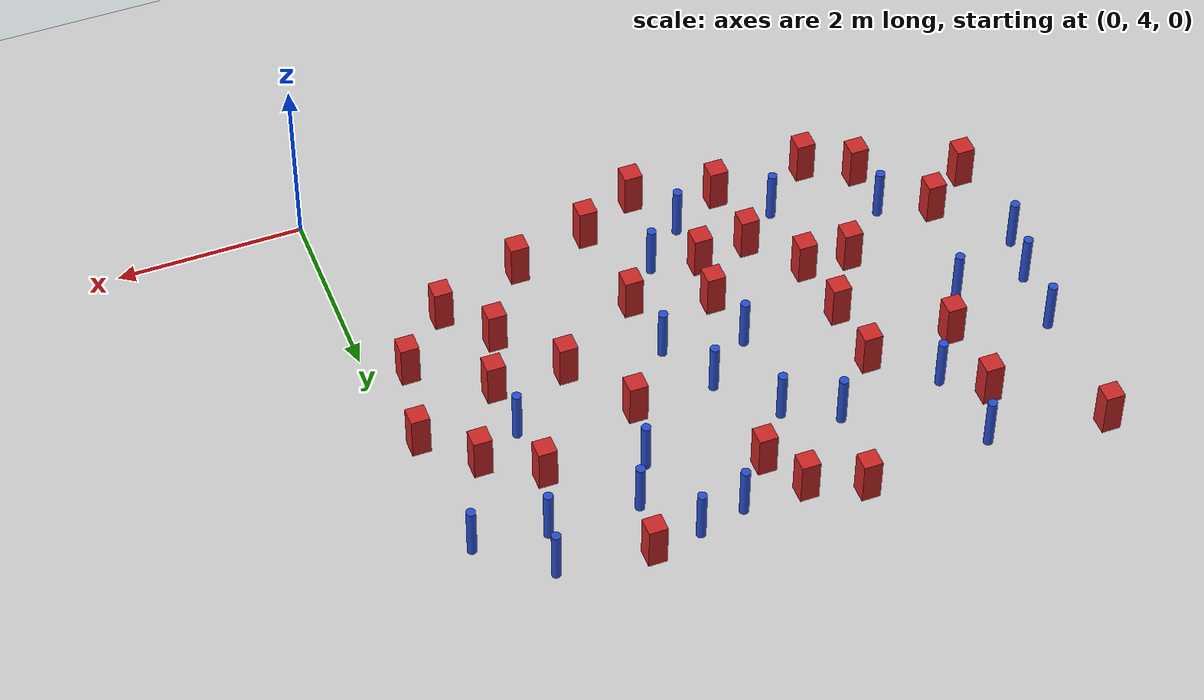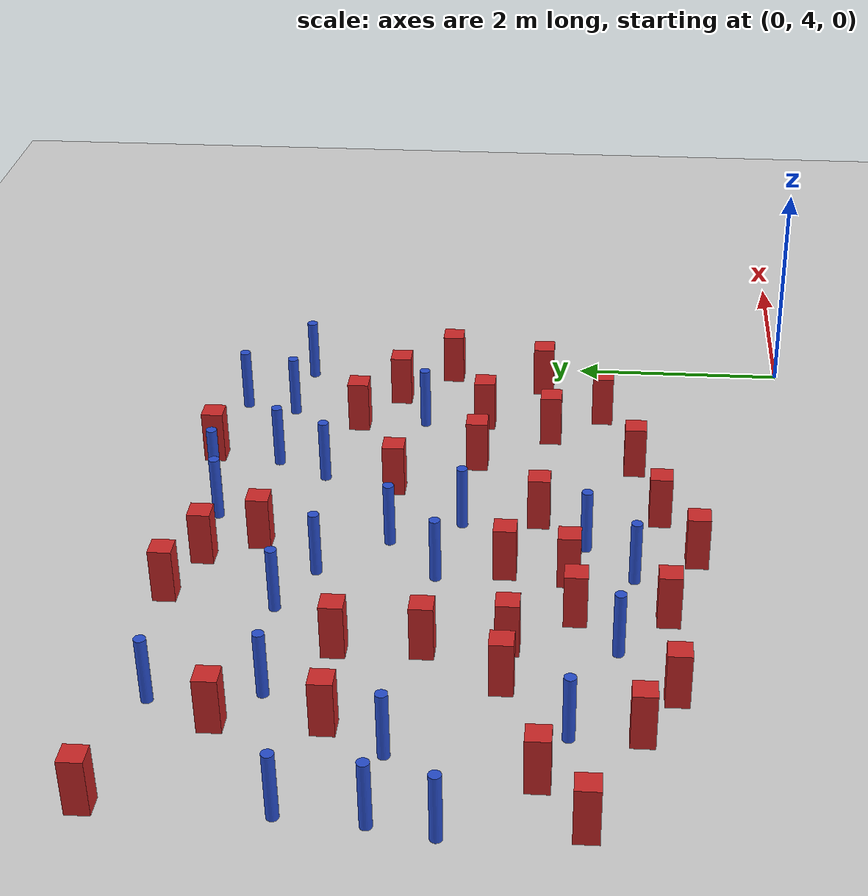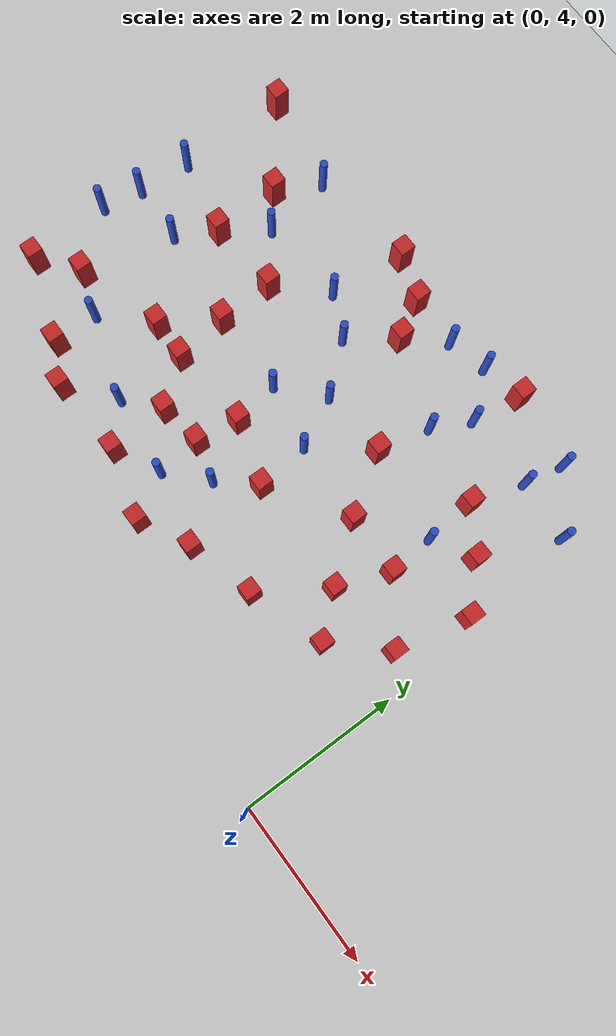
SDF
<sdf version="1.6">
 <world name="default">
  <model name="ground_plane">
   <static>1</static>
   <link name="link">
    <collision name="collision">
     <geometry><plane><normal>0 0 1</normal><size>100 100</size></plane></geometry>
     <surface><friction><ode><mu>100</mu><mu2>50</mu2></ode></friction></surface>
    </collision>
    <visual name="visual">
     <cast_shadows>0</cast_shadows>
     <geometry><plane><normal>0 0 1</normal><size>100 100</size></plane></geometry>
     <material>
      <ambient>1.0 1.0 1.0 1.0</ambient>
      <diffuse>0.8 0.8 0.8 1.0</diffuse>
      <specular>0.01 0.01 0.01 1.000000</specular>
     </material>
    </visual>
   </link>
  </model>
  <model name="pole_obstacle2">
   <static>true</static>
   <pose>-5.81833695681 5.93957102917 -9.47619616065e-06 5.49618799737e-07 2.36310414037e-07 -1.55090534814e-07</pose>
   <link name="link">
    <pose>0 0 0.3 0 -0 0</pose>
    <inertial>
     <mass>1</mass>
     <inertia><ixx>0.145833</ixx><ixy>0</ixy><ixz>0</ixz><iyy>0.145833</iyy><iyz>0</iyz><izz>0.125</izz></inertia>
    </inertial>
    <collision name="collision">
     <geometry><cylinder><radius>0.05</radius><length>.6</length></cylinder></geometry>
    </collision>
    <visual name="visual">
     <geometry><cylinder><radius>0.05</radius><length>.6</length></cylinder></geometry>
     <material>
      <script><name>Gazebo/Blue</name><uri>file://media/materials/scripts/gazebo.material</uri></script>
     </material>
    </visual>
   </link>
  </model>
  <model name="square_post_obstacle5">
   <static>true</static>
   <pose>-4.30946437801 5.93188076959 -6.11067671241e-07 -5.50515727128e-06 -8.79689657224e-07 2.37013304536e-05</pose>
   <link name="link">
    <pose>0 0 0.25 0 -0 0</pose>
    <inertial>
     <mass>100</mass>
     <inertia>
      <ixx>0.166667</ixx>
      <ixy>0</ixy>
      <ixz>0</ixz>
      <iyy>0.166667</iyy>
      <iyz>0</iyz>
      <izz>0.166667</izz>
     </inertia>
    </inertial>
    <collision name="collision"><geometry><box><size>.2 .2 .5</size></box></geometry></collision>
    <visual name="visual">
     <geometry><box><size>.2 .2 .5</size></box></geometry>
     <material>
      <script><name>Gazebo/Red</name><uri>file://media/materials/scripts/gazebo.material</uri></script>
     </material>
    </visual>
   </link>
  </model>
  <model name="pole_obstacle5">
   <static>true</static>
   <pose>-5.44458676205 8.355744914 -9.47619616065e-06 5.49618799737e-07 2.36310414065e-07 -1.55090534796e-07</pose>
   <link name="link">
    <pose>0 0 0.3 0 -0 0</pose>
    <inertial>
     <mass>1</mass>
     <inertia><ixx>0.145833</ixx><ixy>0</ixy><ixz>0</ixz><iyy>0.145833</iyy><iyz>0</iyz><izz>0.125</izz></inertia>
    </inertial>
    <collision name="collision">
     <geometry><cylinder><radius>0.05</radius><length>.6</length></cylinder></geometry>
    </collision>
    <visual name="visual">
     <geometry><cylinder><radius>0.05</radius><length>.6</length></cylinder></geometry>
     <material>
      <script><name>Gazebo/Blue</name><uri>file://media/materials/scripts/gazebo.material</uri></script>
     </material>
    </visual>
   </link>
  </model>
  <model name="square_post_obstacle7">
   <static>true</static>
   <pose>-1.92319323468 5.44292413541 -6.11067671241e-07 -5.50515727128e-06 -8.79689657224e-07 2.37013304536e-05</pose>
   <link name="link">
    <pose>0 0 0.25 0 -0 0</pose>
    <inertial>
     <mass>100</mass>
     <inertia>
      <ixx>0.166667</ixx>
      <ixy>0</ixy>
      <ixz>0</ixz>
      <iyy>0.166667</iyy>
      <iyz>0</iyz>
      <izz>0.166667</izz>
     </inertia>
    </inertial>
    <collision name="collision"><geometry><box><size>.2 .2 .5</size></box></geometry></collision>
    <visual name="visual">
     <geometry><box><size>.2 .2 .5</size></box></geometry>
     <material>
      <script><name>Gazebo/Red</name><uri>file://media/materials/scripts/gazebo.material</uri></script>
     </material>
    </visual>
   </link>
  </model>
  <model name="pole_obstacle7">
   <static>true</static>
   <pose>-0.26180700797 8.7305991788 -9.47619616065e-06 5.49618799738e-07 2.36310414034e-07 -1.55090534817e-07</pose>
   <link name="link">
    <pose>0 0 0.3 0 -0 0</pose>
    <inertial>
     <mass>1</mass>
     <inertia><ixx>0.145833</ixx><ixy>0</ixy><ixz>0</ixz><iyy>0.145833</iyy><iyz>0</iyz><izz>0.125</izz></inertia>
    </inertial>
    <collision name="collision">
     <geometry><cylinder><radius>0.05</radius><length>.6</length></cylinder></geometry>
    </collision>
    <visual name="visual">
     <geometry><cylinder><radius>0.05</radius><length>.6</length></cylinder></geometry>
     <material>
      <script><name>Gazebo/Blue</name><uri>file://media/materials/scripts/gazebo.material</uri></script>
     </material>
    </visual>
   </link>
  </model>
  <model name="square_post_obstacle11">
   <static>true</static>
   <pose>-0.690609439429 7.77177443221 -6.11067671241e-07 -5.50515727128e-06 -8.79689657224e-07 2.37013304536e-05</pose>
   <link name="link">
    <pose>0 0 0.25 0 -0 0</pose>
    <inertial>
     <mass>100</mass>
     <inertia>
      <ixx>0.166667</ixx>
      <ixy>0</ixy>
      <ixz>0</ixz>
      <iyy>0.166667</iyy>
      <iyz>0</iyz>
      <izz>0.166667</izz>
     </inertia>
    </inertial>
    <collision name="collision"><geometry><box><size>.2 .2 .5</size></box></geometry></collision>
    <visual name="visual">
     <geometry><box><size>.2 .2 .5</size></box></geometry>
     <material>
      <script><name>Gazebo/Red</name><uri>file://media/materials/scripts/gazebo.material</uri></script>
     </material>
    </visual>
   </link>
  </model>
  <model name="pole_obstacle11">
   <static>true</static>
   <pose>-5.57443344239 9.24902005777 -9.47619616065e-06 5.49618799737e-07 2.36310414065e-07 -1.55090534796e-07</pose>
   <link name="link">
    <pose>0 0 0.3 0 -0 0</pose>
    <inertial>
     <mass>1</mass>
     <inertia><ixx>0.145833</ixx><ixy>0</ixy><ixz>0</ixz><iyy>0.145833</iyy><iyz>0</iyz><izz>0.125</izz></inertia>
    </inertial>
    <collision name="collision">
     <geometry><cylinder><radius>0.05</radius><length>.6</length></cylinder></geometry>
    </collision>
    <visual name="visual">
     <geometry><cylinder><radius>0.05</radius><length>.6</length></cylinder></geometry>
     <material>
      <script><name>Gazebo/Blue</name><uri>file://media/materials/scripts/gazebo.material</uri></script>
     </material>
    </visual>
   </link>
  </model>
  <model name="pole_obstacle29">
   <static>true</static>
   <pose>-2.94104141852 9.20518685365 -9.4761961606e-06 5.49618799729e-07 2.36310414e-07 -1.55090534824e-07</pose>
   <link name="link">
    <pose>0 0 0.3 0 -0 0</pose>
    <inertial>
     <mass>1</mass>
     <inertia><ixx>0.145833</ixx><ixy>0</ixy><ixz>0</ixz><iyy>0.145833</iyy><iyz>0</iyz><izz>0.125</izz></inertia>
    </inertial>
    <collision name="collision">
     <geometry><cylinder><radius>0.05</radius><length>.6</length></cylinder></geometry>
    </collision>
    <visual name="visual">
     <geometry><cylinder><radius>0.05</radius><length>.6</length></cylinder></geometry>
     <material>
      <script><name>Gazebo/Blue</name><uri>file://media/materials/scripts/gazebo.material</uri></script>
     </material>
    </visual>
   </link>
  </model>
  <model name="pole_obstacle34">
   <static>true</static>
   <pose>-3.763663958 8.18637187351 -9.47619616065e-06 5.49618799738e-07 2.36310414059e-07 -1.55090534802e-07</pose>
   <link name="link">
    <pose>0 0 0.3 0 -0 0</pose>
    <inertial>
     <mass>1</mass>
     <inertia><ixx>0.145833</ixx><ixy>0</ixy><ixz>0</ixz><iyy>0.145833</iyy><iyz>0</iyz><izz>0.125</izz></inertia>
    </inertial>
    <collision name="collision">
     <geometry><cylinder><radius>0.05</radius><length>.6</length></cylinder></geometry>
    </collision>
    <visual name="visual">
     <geometry><cylinder><radius>0.05</radius><length>.6</length></cylinder></geometry>
     <material>
      <script><name>Gazebo/Blue</name><uri>file://media/materials/scripts/gazebo.material</uri></script>
     </material>
    </visual>
   </link>
  </model>
  <model name="pole_obstacle37">
   <static>true</static>
   <pose>-2.94861577744 6.98473050301 -9.47619616065e-06 5.49618799738e-07 2.3631041406e-07 -1.55090534801e-07</pose>
   <link name="link">
    <pose>0 0 0.3 0 -0 0</pose>
    <inertial>
     <mass>1</mass>
     <inertia><ixx>0.145833</ixx><ixy>0</ixy><ixz>0</ixz><iyy>0.145833</iyy><iyz>0</iyz><izz>0.125</izz></inertia>
    </inertial>
    <collision name="collision">
     <geometry><cylinder><radius>0.05</radius><length>.6</length></cylinder></geometry>
    </collision>
    <visual name="visual">
     <geometry><cylinder><radius>0.05</radius><length>.6</length></cylinder></geometry>
     <material>
      <script><name>Gazebo/Blue</name><uri>file://media/materials/scripts/gazebo.material</uri></script>
     </material>
    </visual>
   </link>
  </model>
  <model name="square_post_obstacle39">
   <static>true</static>
   <pose>-0.97510671104 5.76018146043 -6.11067671241e-07 -5.50515727128e-06 -8.79689657224e-07 2.37013304536e-05</pose>
   <link name="link">
    <pose>0 0 0.25 0 -0 0</pose>
    <inertial>
     <mass>100</mass>
     <inertia>
      <ixx>0.166667</ixx>
      <ixy>0</ixy>
      <ixz>0</ixz>
      <iyy>0.166667</iyy>
      <iyz>0</iyz>
      <izz>0.166667</izz>
     </inertia>
    </inertial>
    <collision name="collision"><geometry><box><size>.2 .2 .5</size></box></geometry></collision>
    <visual name="visual">
     <geometry><box><size>.2 .2 .5</size></box></geometry>
     <material>
      <script><name>Gazebo/Red</name><uri>file://media/materials/scripts/gazebo.material</uri></script>
     </material>
    </visual>
   </link>
  </model>
  <model name="square_post_obstacle44">
   <static>true</static>
   <pose>-1.14217479079 6.90516083748 -6.11067671241e-07 -5.50515727128e-06 -8.79689657224e-07 2.37013304536e-05</pose>
   <link name="link">
    <pose>0 0 0.25 0 -0 0</pose>
    <inertial>
     <mass>100</mass>
     <inertia>
      <ixx>0.166667</ixx>
      <ixy>0</ixy>
      <ixz>0</ixz>
      <iyy>0.166667</iyy>
      <iyz>0</iyz>
      <izz>0.166667</izz>
     </inertia>
    </inertial>
    <collision name="collision"><geometry><box><size>.2 .2 .5</size></box></geometry></collision>
    <visual name="visual">
     <geometry><box><size>.2 .2 .5</size></box></geometry>
     <material>
      <script><name>Gazebo/Red</name><uri>file://media/materials/scripts/gazebo.material</uri></script>
     </material>
    </visual>
   </link>
  </model>
  <model name="pole_obstacle49">
   <static>true</static>
   <pose>-3.25867860269 5.86727887538 -9.47619616065e-06 5.49618799738e-07 2.3631041406e-07 -1.55090534801e-07</pose>
   <link name="link">
    <pose>0 0 0.3 0 -0 0</pose>
    <inertial>
     <mass>1</mass>
     <inertia><ixx>0.145833</ixx><ixy>0</ixy><ixz>0</ixz><iyy>0.145833</iyy><iyz>0</iyz><izz>0.125</izz></inertia>
    </inertial>
    <collision name="collision">
     <geometry><cylinder><radius>0.05</radius><length>.6</length></cylinder></geometry>
    </collision>
    <visual name="visual">
     <geometry><cylinder><radius>0.05</radius><length>.6</length></cylinder></geometry>
     <material>
      <script><name>Gazebo/Blue</name><uri>file://media/materials/scripts/gazebo.material</uri></script>
     </material>
    </visual>
   </link>
  </model>
  <model name="pole_obstacle50">
   <static>true</static>
   <pose>-6.1054438863 7.32093617901 -9.47619616065e-06 5.49618799737e-07 2.36310414037e-07 -1.55090534814e-07</pose>
   <link name="link">
    <pose>0 0 0.3 0 -0 0</pose>
    <inertial>
     <mass>1</mass>
     <inertia><ixx>0.145833</ixx><ixy>0</ixy><ixz>0</ixz><iyy>0.145833</iyy><iyz>0</iyz><izz>0.125</izz></inertia>
    </inertial>
    <collision name="collision">
     <geometry><cylinder><radius>0.05</radius><length>.6</length></cylinder></geometry>
    </collision>
    <visual name="visual">
     <geometry><cylinder><radius>0.05</radius><length>.6</length></cylinder></geometry>
     <material>
      <script><name>Gazebo/Blue</name><uri>file://media/materials/scripts/gazebo.material</uri></script>
     </material>
    </visual>
   </link>
  </model>
  <model name="square_post_obstacle58">
   <static>true</static>
   <pose>-1.90418923898 9.42533072207 -6.11067671241e-07 -5.50515727128e-06 -8.79689657224e-07 2.37013304536e-05</pose>
   <link name="link">
    <pose>0 0 0.25 0 -0 0</pose>
    <inertial>
     <mass>100</mass>
     <inertia>
      <ixx>0.166667</ixx>
      <ixy>0</ixy>
      <ixz>0</ixz>
      <iyy>0.166667</iyy>
      <iyz>0</iyz>
      <izz>0.166667</izz>
     </inertia>
    </inertial>
    <collision name="collision"><geometry><box><size>.2 .2 .5</size></box></geometry></collision>
    <visual name="visual">
     <geometry><box><size>.2 .2 .5</size></box></geometry>
     <material>
      <script><name>Gazebo/Red</name><uri>file://media/materials/scripts/gazebo.material</uri></script>
     </material>
    </visual>
   </link>
  </model>
  <model name="pole_obstacle59">
   <static>true</static>
   <pose>-3.71856970385 5.43958688973 -9.4761961606e-06 5.49618799729e-07 2.36310414006e-07 -1.55090534822e-07</pose>
   <link name="link">
    <pose>0 0 0.3 0 -0 0</pose>
    <inertial>
     <mass>1</mass>
     <inertia><ixx>0.145833</ixx><ixy>0</ixy><ixz>0</ixz><iyy>0.145833</iyy><iyz>0</iyz><izz>0.125</izz></inertia>
    </inertial>
    <collision name="collision">
     <geometry><cylinder><radius>0.05</radius><length>.6</length></cylinder></geometry>
    </collision>
    <visual name="visual">
     <geometry><cylinder><radius>0.05</radius><length>.6</length></cylinder></geometry>
     <material>
      <script><name>Gazebo/Blue</name><uri>file://media/materials/scripts/gazebo.material</uri></script>
     </material>
    </visual>
   </link>
  </model>
  <model name="pole_obstacle65">
   <static>true</static>
   <pose>-6.81799207225 8.04129058109 -9.47619616065e-06 5.49618799737e-07 2.36310414048e-07 -1.55090534806e-07</pose>
   <link name="link">
    <pose>0 0 0.3 0 -0 0</pose>
    <inertial>
     <mass>1</mass>
     <inertia><ixx>0.145833</ixx><ixy>0</ixy><ixz>0</ixz><iyy>0.145833</iyy><iyz>0</iyz><izz>0.125</izz></inertia>
    </inertial>
    <collision name="collision">
     <geometry><cylinder><radius>0.05</radius><length>.6</length></cylinder></geometry>
    </collision>
    <visual name="visual">
     <geometry><cylinder><radius>0.05</radius><length>.6</length></cylinder></geometry>
     <material>
      <script><name>Gazebo/Blue</name><uri>file://media/materials/scripts/gazebo.material</uri></script>
     </material>
    </visual>
   </link>
  </model>
  <model name="square_post_obstacle73">
   <static>true</static>
   <pose>-6.84872192201 5.77889668165 -6.11067671241e-07 -5.50515727128e-06 -8.79689657224e-07 2.37013304536e-05</pose>
   <link name="link">
    <pose>0 0 0.25 0 -0 0</pose>
    <inertial>
     <mass>100</mass>
     <inertia>
      <ixx>0.166667</ixx>
      <ixy>0</ixy>
      <ixz>0</ixz>
      <iyy>0.166667</iyy>
      <iyz>0</iyz>
      <izz>0.166667</izz>
     </inertia>
    </inertial>
    <collision name="collision"><geometry><box><size>.2 .2 .5</size></box></geometry></collision>
    <visual name="visual">
     <geometry><box><size>.2 .2 .5</size></box></geometry>
     <material>
      <script><name>Gazebo/Red</name><uri>file://media/materials/scripts/gazebo.material</uri></script>
     </material>
    </visual>
   </link>
  </model>
  <model name="square_post_obstacle75">
   <static>true</static>
   <pose>-3.67546666853 6.55635057806 -6.11067671241e-07 -5.50515727128e-06 -8.79689657224e-07 2.37013304536e-05</pose>
   <link name="link">
    <pose>0 0 0.25 0 -0 0</pose>
    <inertial>
     <mass>100</mass>
     <inertia>
      <ixx>0.166667</ixx>
      <ixy>0</ixy>
      <ixz>0</ixz>
      <iyy>0.166667</iyy>
      <iyz>0</iyz>
      <izz>0.166667</izz>
     </inertia>
    </inertial>
    <collision name="collision"><geometry><box><size>.2 .2 .5</size></box></geometry></collision>
    <visual name="visual">
     <geometry><box><size>.2 .2 .5</size></box></geometry>
     <material>
      <script><name>Gazebo/Red</name><uri>file://media/materials/scripts/gazebo.material</uri></script>
     </material>
    </visual>
   </link>
  </model>
  <model name="pole_obstacle73">
   <static>true</static>
   <pose>-1.99590519166 8.80236627083 -9.47619616065e-06 5.49618799737e-07 2.36310414046e-07 -1.55090534809e-07</pose>
   <link name="link">
    <pose>0 0 0.3 0 -0 0</pose>
    <inertial>
     <mass>1</mass>
     <inertia><ixx>0.145833</ixx><ixy>0</ixy><ixz>0</ixz><iyy>0.145833</iyy><iyz>0</iyz><izz>0.125</izz></inertia>
    </inertial>
    <collision name="collision">
     <geometry><cylinder><radius>0.05</radius><length>.6</length></cylinder></geometry>
    </collision>
    <visual name="visual">
     <geometry><cylinder><radius>0.05</radius><length>.6</length></cylinder></geometry>
     <material>
      <script><name>Gazebo/Blue</name><uri>file://media/materials/scripts/gazebo.material</uri></script>
     </material>
    </visual>
   </link>
  </model>
  <model name="square_post_obstacle79">
   <static>true</static>
   <pose>-6.35110195523 6.15128916751 -6.11067671241e-07 -5.50515727128e-06 -8.79689657224e-07 2.37013304536e-05</pose>
   <link name="link">
    <pose>0 0 0.25 0 -0 0</pose>
    <inertial>
     <mass>100</mass>
     <inertia>
      <ixx>0.166667</ixx>
      <ixy>0</ixy>
      <ixz>0</ixz>
      <iyy>0.166667</iyy>
      <iyz>0</iyz>
      <izz>0.166667</izz>
     </inertia>
    </inertial>
    <collision name="collision"><geometry><box><size>.2 .2 .5</size></box></geometry></collision>
    <visual name="visual">
     <geometry><box><size>.2 .2 .5</size></box></geometry>
     <material>
      <script><name>Gazebo/Red</name><uri>file://media/materials/scripts/gazebo.material</uri></script>
     </material>
    </visual>
   </link>
  </model>
  <model name="pole_obstacle81">
   <static>true</static>
   <pose>-1.03234002842 8.80458537299 -9.47619616065e-06 5.49618799737e-07 2.3631041405e-07 -1.55090534806e-07</pose>
   <link name="link">
    <pose>0 0 0.3 0 -0 0</pose>
    <inertial>
     <mass>1</mass>
     <inertia><ixx>0.145833</ixx><ixy>0</ixy><ixz>0</ixz><iyy>0.145833</iyy><iyz>0</iyz><izz>0.125</izz></inertia>
    </inertial>
    <collision name="collision">
     <geometry><cylinder><radius>0.05</radius><length>.6</length></cylinder></geometry>
    </collision>
    <visual name="visual">
     <geometry><cylinder><radius>0.05</radius><length>.6</length></cylinder></geometry>
     <material>
      <script><name>Gazebo/Blue</name><uri>file://media/materials/scripts/gazebo.material</uri></script>
     </material>
    </visual>
   </link>
  </model>
  <model name="pole_obstacle82">
   <static>true</static>
   <pose>-2.23920383538 8.32822380168 -9.4761961606e-06 5.49618799729e-07 2.36310414e-07 -1.55090534824e-07</pose>
   <link name="link">
    <pose>0 0 0.3 0 -0 0</pose>
    <inertial>
     <mass>1</mass>
     <inertia><ixx>0.145833</ixx><ixy>0</ixy><ixz>0</ixz><iyy>0.145833</iyy><iyz>0</iyz><izz>0.125</izz></inertia>
    </inertial>
    <collision name="collision">
     <geometry><cylinder><radius>0.05</radius><length>.6</length></cylinder></geometry>
    </collision>
    <visual name="visual">
     <geometry><cylinder><radius>0.05</radius><length>.6</length></cylinder></geometry>
     <material>
      <script><name>Gazebo/Blue</name><uri>file://media/materials/scripts/gazebo.material</uri></script>
     </material>
    </visual>
   </link>
  </model>
  <model name="pole_obstacle85">
   <static>true</static>
   <pose>-6.86442686227 7.35812549986 -9.47619616065e-06 5.49618799737e-07 2.36310414037e-07 -1.55090534814e-07</pose>
   <link name="link">
    <pose>0 0 0.3 0 -0 0</pose>
    <inertial>
     <mass>1</mass>
     <inertia><ixx>0.145833</ixx><ixy>0</ixy><ixz>0</ixz><iyy>0.145833</iyy><iyz>0</iyz><izz>0.125</izz></inertia>
    </inertial>
    <collision name="collision">
     <geometry><cylinder><radius>0.05</radius><length>.6</length></cylinder></geometry>
    </collision>
    <visual name="visual">
     <geometry><cylinder><radius>0.05</radius><length>.6</length></cylinder></geometry>
     <material>
      <script><name>Gazebo/Blue</name><uri>file://media/materials/scripts/gazebo.material</uri></script>
     </material>
    </visual>
   </link>
  </model>
  <model name="pole_obstacle89">
   <static>true</static>
   <pose>-6.95690997227 6.84431766455 -9.47619616065e-06 5.49618799737e-07 2.36310414037e-07 -1.55090534814e-07</pose>
   <link name="link">
    <pose>0 0 0.3 0 -0 0</pose>
    <inertial>
     <mass>1</mass>
     <inertia><ixx>0.145833</ixx><ixy>0</ixy><ixz>0</ixz><iyy>0.145833</iyy><iyz>0</iyz><izz>0.125</izz></inertia>
    </inertial>
    <collision name="collision">
     <geometry><cylinder><radius>0.05</radius><length>.6</length></cylinder></geometry>
    </collision>
    <visual name="visual">
     <geometry><cylinder><radius>0.05</radius><length>.6</length></cylinder></geometry>
     <material>
      <script><name>Gazebo/Blue</name><uri>file://media/materials/scripts/gazebo.material</uri></script>
     </material>
    </visual>
   </link>
  </model>
  <model name="pole_obstacle92">
   <static>true</static>
   <pose>-1.18280922246 7.48957110311 -9.47619616065e-06 5.49618799737e-07 2.36310414061e-07 -1.550905348e-07</pose>
   <link name="link">
    <pose>0 0 0.3 0 -0 0</pose>
    <inertial>
     <mass>1</mass>
     <inertia><ixx>0.145833</ixx><ixy>0</ixy><ixz>0</ixz><iyy>0.145833</iyy><iyz>0</iyz><izz>0.125</izz></inertia>
    </inertial>
    <collision name="collision">
     <geometry><cylinder><radius>0.05</radius><length>.6</length></cylinder></geometry>
    </collision>
    <visual name="visual">
     <geometry><cylinder><radius>0.05</radius><length>.6</length></cylinder></geometry>
     <material>
      <script><name>Gazebo/Blue</name><uri>file://media/materials/scripts/gazebo.material</uri></script>
     </material>
    </visual>
   </link>
  </model>
  <model name="square_post_obstacle92">
   <static>true</static>
   <pose>-0.407981882254 6.36074857831 -6.11067671241e-07 -5.50515727128e-06 -8.79689657224e-07 2.37013304536e-05</pose>
   <link name="link">
    <pose>0 0 0.25 0 -0 0</pose>
    <inertial>
     <mass>100</mass>
     <inertia>
      <ixx>0.166667</ixx>
      <ixy>0</ixy>
      <ixz>0</ixz>
      <iyy>0.166667</iyy>
      <iyz>0</iyz>
      <izz>0.166667</izz>
     </inertia>
    </inertial>
    <collision name="collision"><geometry><box><size>.2 .2 .5</size></box></geometry></collision>
    <visual name="visual">
     <geometry><box><size>.2 .2 .5</size></box></geometry>
     <material>
      <script><name>Gazebo/Red</name><uri>file://media/materials/scripts/gazebo.material</uri></script>
     </material>
    </visual>
   </link>
  </model>
  <model name="square_post_obstacle95">
   <static>true</static>
   <pose>-5.29317241911 5.10569635922 -6.11067671241e-07 -5.50515727128e-06 -8.79689657224e-07 2.37013304536e-05</pose>
   <link name="link">
    <pose>0 0 0.25 0 -0 0</pose>
    <inertial>
     <mass>100</mass>
     <inertia>
      <ixx>0.166667</ixx>
      <ixy>0</ixy>
      <ixz>0</ixz>
      <iyy>0.166667</iyy>
      <iyz>0</iyz>
      <izz>0.166667</izz>
     </inertia>
    </inertial>
    <collision name="collision"><geometry><box><size>.2 .2 .5</size></box></geometry></collision>
    <visual name="visual">
     <geometry><box><size>.2 .2 .5</size></box></geometry>
     <material>
      <script><name>Gazebo/Red</name><uri>file://media/materials/scripts/gazebo.material</uri></script>
     </material>
    </visual>
   </link>
  </model>
  <model name="square_post_obstacle99">
   <static>true</static>
   <pose>-1.91256514736 6.92668962869 -6.11067671241e-07 -5.50515727128e-06 -8.79689657224e-07 2.37013304536e-05</pose>
   <link name="link">
    <pose>0 0 0.25 0 -0 0</pose>
    <inertial>
     <mass>100</mass>
     <inertia>
      <ixx>0.166667</ixx>
      <ixy>0</ixy>
      <ixz>0</ixz>
      <iyy>0.166667</iyy>
      <iyz>0</iyz>
      <izz>0.166667</izz>
     </inertia>
    </inertial>
    <collision name="collision"><geometry><box><size>.2 .2 .5</size></box></geometry></collision>
    <visual name="visual">
     <geometry><box><size>.2 .2 .5</size></box></geometry>
     <material>
      <script><name>Gazebo/Red</name><uri>file://media/materials/scripts/gazebo.material</uri></script>
     </material>
    </visual>
   </link>
  </model>
  <model name="pole_obstacle114">
   <static>true</static>
   <pose>-4.3118623763 8.45672680437 -9.47619616065e-06 5.49618799737e-07 2.36310414065e-07 -1.55090534796e-07</pose>
   <link name="link">
    <pose>0 0 0.3 0 -0 0</pose>
    <inertial>
     <mass>1</mass>
     <inertia><ixx>0.145833</ixx><ixy>0</ixy><ixz>0</ixz><iyy>0.145833</iyy><iyz>0</iyz><izz>0.125</izz></inertia>
    </inertial>
    <collision name="collision">
     <geometry><cylinder><radius>0.05</radius><length>.6</length></cylinder></geometry>
    </collision>
    <visual name="visual">
     <geometry><cylinder><radius>0.05</radius><length>.6</length></cylinder></geometry>
     <material>
      <script><name>Gazebo/Blue</name><uri>file://media/materials/scripts/gazebo.material</uri></script>
     </material>
    </visual>
   </link>
  </model>
  <model name="square_post_obstacle104">
   <static>true</static>
   <pose>-2.76906793275 5.21367266199 -6.11067671241e-07 -5.50515727128e-06 -8.79689657224e-07 2.37013304536e-05</pose>
   <link name="link">
    <pose>0 0 0.25 0 -0 0</pose>
    <inertial>
     <mass>100</mass>
     <inertia>
      <ixx>0.166667</ixx>
      <ixy>0</ixy>
      <ixz>0</ixz>
      <iyy>0.166667</iyy>
      <iyz>0</iyz>
      <izz>0.166667</izz>
     </inertia>
    </inertial>
    <collision name="collision"><geometry><box><size>.2 .2 .5</size></box></geometry></collision>
    <visual name="visual">
     <geometry><box><size>.2 .2 .5</size></box></geometry>
     <material>
      <script><name>Gazebo/Red</name><uri>file://media/materials/scripts/gazebo.material</uri></script>
     </material>
    </visual>
   </link>
  </model>
  <model name="square_post_obstacle105">
   <static>true</static>
   <pose>-0.204549080265 7.28830263991 -6.11067671241e-07 -5.50515727128e-06 -8.79689657224e-07 2.37013304536e-05</pose>
   <link name="link">
    <pose>0 0 0.25 0 -0 0</pose>
    <inertial>
     <mass>100</mass>
     <inertia>
      <ixx>0.166667</ixx>
      <ixy>0</ixy>
      <ixz>0</ixz>
      <iyy>0.166667</iyy>
      <iyz>0</iyz>
      <izz>0.166667</izz>
     </inertia>
    </inertial>
    <collision name="collision"><geometry><box><size>.2 .2 .5</size></box></geometry></collision>
    <visual name="visual">
     <geometry><box><size>.2 .2 .5</size></box></geometry>
     <material>
      <script><name>Gazebo/Red</name><uri>file://media/materials/scripts/gazebo.material</uri></script>
     </material>
    </visual>
   </link>
  </model>
  <model name="square_post_obstacle117">
   <static>true</static>
   <pose>-4.27019305868 5.15765999209 -6.11067671241e-07 -5.50515727128e-06 -8.79689657224e-07 2.37013304536e-05</pose>
   <link name="link">
    <pose>0 0 0.25 0 -0 0</pose>
    <inertial>
     <mass>100</mass>
     <inertia>
      <ixx>0.166667</ixx>
      <ixy>0</ixy>
      <ixz>0</ixz>
      <iyy>0.166667</iyy>
      <iyz>0</iyz>
      <izz>0.166667</izz>
     </inertia>
    </inertial>
    <collision name="collision"><geometry><box><size>.2 .2 .5</size></box></geometry></collision>
    <visual name="visual">
     <geometry><box><size>.2 .2 .5</size></box></geometry>
     <material>
      <script><name>Gazebo/Red</name><uri>file://media/materials/scripts/gazebo.material</uri></script>
     </material>
    </visual>
   </link>
  </model>
  <model name="square_post_obstacle124">
   <static>true</static>
   <pose>-4.85682069097 7.8738312947 -6.11067671241e-07 -5.50515727128e-06 -8.79689657224e-07 2.37013304536e-05</pose>
   <link name="link">
    <pose>0 0 0.25 0 -0 0</pose>
    <inertial>
     <mass>100</mass>
     <inertia>
      <ixx>0.166667</ixx>
      <ixy>0</ixy>
      <ixz>0</ixz>
      <iyy>0.166667</iyy>
      <iyz>0</iyz>
      <izz>0.166667</izz>
     </inertia>
    </inertial>
    <collision name="collision"><geometry><box><size>.2 .2 .5</size></box></geometry></collision>
    <visual name="visual">
     <geometry><box><size>.2 .2 .5</size></box></geometry>
     <material>
      <script><name>Gazebo/Red</name><uri>file://media/materials/scripts/gazebo.material</uri></script>
     </material>
    </visual>
   </link>
  </model>
  <model name="pole_obstacle142">
   <static>true</static>
   <pose>-3.26492832697 7.60374540366 -9.47619616065e-06 5.49618799738e-07 2.3631041406e-07 -1.55090534801e-07</pose>
   <link name="link">
    <pose>0 0 0.3 0 -0 0</pose>
    <inertial>
     <mass>1</mass>
     <inertia><ixx>0.145833</ixx><ixy>0</ixy><ixz>0</ixz><iyy>0.145833</iyy><iyz>0</iyz><izz>0.125</izz></inertia>
    </inertial>
    <collision name="collision">
     <geometry><cylinder><radius>0.05</radius><length>.6</length></cylinder></geometry>
    </collision>
    <visual name="visual">
     <geometry><cylinder><radius>0.05</radius><length>.6</length></cylinder></geometry>
     <material>
      <script><name>Gazebo/Blue</name><uri>file://media/materials/scripts/gazebo.material</uri></script>
     </material>
    </visual>
   </link>
  </model>
  <model name="pole_obstacle155">
   <static>true</static>
   <pose>-2.43321248155 9.33133249633 -9.4761961606e-06 5.49618799729e-07 2.36310414e-07 -1.55090534824e-07</pose>
   <link name="link">
    <pose>0 0 0.3 0 -0 0</pose>
    <inertial>
     <mass>1</mass>
     <inertia><ixx>0.145833</ixx><ixy>0</ixy><ixz>0</ixz><iyy>0.145833</iyy><iyz>0</iyz><izz>0.125</izz></inertia>
    </inertial>
    <collision name="collision">
     <geometry><cylinder><radius>0.05</radius><length>.6</length></cylinder></geometry>
    </collision>
    <visual name="visual">
     <geometry><cylinder><radius>0.05</radius><length>.6</length></cylinder></geometry>
     <material>
      <script><name>Gazebo/Blue</name><uri>file://media/materials/scripts/gazebo.material</uri></script>
     </material>
    </visual>
   </link>
  </model>
  <model name="square_post_obstacle145">
   <static>true</static>
   <pose>-5.83713753527 8.68588297781 -6.11067671241e-07 -5.50515727128e-06 -8.79689657224e-07 2.37013304536e-05</pose>
   <link name="link">
    <pose>0 0 0.25 0 -0 0</pose>
    <inertial>
     <mass>100</mass>
     <inertia>
      <ixx>0.166667</ixx>
      <ixy>0</ixy>
      <ixz>0</ixz>
      <iyy>0.166667</iyy>
      <iyz>0</iyz>
      <izz>0.166667</izz>
     </inertia>
    </inertial>
    <collision name="collision"><geometry><box><size>.2 .2 .5</size></box></geometry></collision>
    <visual name="visual">
     <geometry><box><size>.2 .2 .5</size></box></geometry>
     <material>
      <script><name>Gazebo/Red</name><uri>file://media/materials/scripts/gazebo.material</uri></script>
     </material>
    </visual>
   </link>
  </model>
  <model name="square_post_obstacle155">
   <static>true</static>
   <pose>-6.79887623607 9.45100425614 -6.11067671241e-07 -5.50515727128e-06 -8.79689657224e-07 2.37013304536e-05</pose>
   <link name="link">
    <pose>0 0 0.25 0 -0 0</pose>
    <inertial>
     <mass>100</mass>
     <inertia>
      <ixx>0.166667</ixx>
      <ixy>0</ixy>
      <ixz>0</ixz>
      <iyy>0.166667</iyy>
      <iyz>0</iyz>
      <izz>0.166667</izz>
     </inertia>
    </inertial>
    <collision name="collision"><geometry><box><size>.2 .2 .5</size></box></geometry></collision>
    <visual name="visual">
     <geometry><box><size>.2 .2 .5</size></box></geometry>
     <material>
      <script><name>Gazebo/Red</name><uri>file://media/materials/scripts/gazebo.material</uri></script>
     </material>
    </visual>
   </link>
  </model>
  <model name="square_post_obstacle156">
   <static>true</static>
   <pose>-3.34515012967 8.73984222616 -6.11067671241e-07 -5.50515727128e-06 -8.79689657224e-07 2.37013304536e-05</pose>
   <link name="link">
    <pose>0 0 0.25 0 -0 0</pose>
    <inertial>
     <mass>100</mass>
     <inertia>
      <ixx>0.166667</ixx>
      <ixy>0</ixy>
      <ixz>0</ixz>
      <iyy>0.166667</iyy>
      <iyz>0</iyz>
      <izz>0.166667</izz>
     </inertia>
    </inertial>
    <collision name="collision"><geometry><box><size>.2 .2 .5</size></box></geometry></collision>
    <visual name="visual">
     <geometry><box><size>.2 .2 .5</size></box></geometry>
     <material>
      <script><name>Gazebo/Red</name><uri>file://media/materials/scripts/gazebo.material</uri></script>
     </material>
    </visual>
   </link>
  </model>
  <model name="pole_obstacle165">
   <static>true</static>
   <pose>-4.74267724619 5.56910457579 -9.47619616065e-06 5.49618799737e-07 2.36310414037e-07 -1.55090534814e-07</pose>
   <link name="link">
    <pose>0 0 0.3 0 -0 0</pose>
    <inertial>
     <mass>1</mass>
     <inertia><ixx>0.145833</ixx><ixy>0</ixy><ixz>0</ixz><iyy>0.145833</iyy><iyz>0</iyz><izz>0.125</izz></inertia>
    </inertial>
    <collision name="collision">
     <geometry><cylinder><radius>0.05</radius><length>.6</length></cylinder></geometry>
    </collision>
    <visual name="visual">
     <geometry><cylinder><radius>0.05</radius><length>.6</length></cylinder></geometry>
     <material>
      <script><name>Gazebo/Blue</name><uri>file://media/materials/scripts/gazebo.material</uri></script>
     </material>
    </visual>
   </link>
  </model>
  <model name="pole_obstacle167">
   <static>true</static>
   <pose>-3.78420378303 7.14942266933 -9.47619616065e-06 5.49618799738e-07 2.3631041406e-07 -1.55090534801e-07</pose>
   <link name="link">
    <pose>0 0 0.3 0 -0 0</pose>
    <inertial>
     <mass>1</mass>
     <inertia><ixx>0.145833</ixx><ixy>0</ixy><ixz>0</ixz><iyy>0.145833</iyy><iyz>0</iyz><izz>0.125</izz></inertia>
    </inertial>
    <collision name="collision">
     <geometry><cylinder><radius>0.05</radius><length>.6</length></cylinder></geometry>
    </collision>
    <visual name="visual">
     <geometry><cylinder><radius>0.05</radius><length>.6</length></cylinder></geometry>
     <material>
      <script><name>Gazebo/Blue</name><uri>file://media/materials/scripts/gazebo.material</uri></script>
     </material>
    </visual>
   </link>
  </model>
  <model name="pole_obstacle169">
   <static>true</static>
   <pose>-0.932241594514 9.29612527255 -9.47619616065e-06 5.49618799737e-07 2.36310414038e-07 -1.55090534813e-07</pose>
   <link name="link">
    <pose>0 0 0.3 0 -0 0</pose>
    <inertial>
     <mass>1</mass>
     <inertia><ixx>0.145833</ixx><ixy>0</ixy><ixz>0</ixz><iyy>0.145833</iyy><iyz>0</iyz><izz>0.125</izz></inertia>
    </inertial>
    <collision name="collision">
     <geometry><cylinder><radius>0.05</radius><length>.6</length></cylinder></geometry>
    </collision>
    <visual name="visual">
     <geometry><cylinder><radius>0.05</radius><length>.6</length></cylinder></geometry>
     <material>
      <script><name>Gazebo/Blue</name><uri>file://media/materials/scripts/gazebo.material</uri></script>
     </material>
    </visual>
   </link>
  </model>
  <model name="square_post_obstacle166">
   <static>true</static>
   <pose>-2.86461788168 6.30049960394 -6.11067671241e-07 -5.50515727128e-06 -8.79689657224e-07 2.37013304536e-05</pose>
   <link name="link">
    <pose>0 0 0.25 0 -0 0</pose>
    <inertial>
     <mass>100</mass>
     <inertia>
      <ixx>0.166667</ixx>
      <ixy>0</ixy>
      <ixz>0</ixz>
      <iyy>0.166667</iyy>
      <iyz>0</iyz>
      <izz>0.166667</izz>
     </inertia>
    </inertial>
    <collision name="collision"><geometry><box><size>.2 .2 .5</size></box></geometry></collision>
    <visual name="visual">
     <geometry><box><size>.2 .2 .5</size></box></geometry>
     <material>
      <script><name>Gazebo/Red</name><uri>file://media/materials/scripts/gazebo.material</uri></script>
     </material>
    </visual>
   </link>
  </model>
  <model name="square_post_obstacle167">
   <static>true</static>
   <pose>-5.24558795393 6.48726975369 -6.11067671241e-07 -5.50515727128e-06 -8.79689657224e-07 2.37013304536e-05</pose>
   <link name="link">
    <pose>0 0 0.25 0 -0 0</pose>
    <inertial>
     <mass>100</mass>
     <inertia>
      <ixx>0.166667</ixx>
      <ixy>0</ixy>
      <ixz>0</ixz>
      <iyy>0.166667</iyy>
      <iyz>0</iyz>
      <izz>0.166667</izz>
     </inertia>
    </inertial>
    <collision name="collision"><geometry><box><size>.2 .2 .5</size></box></geometry></collision>
    <visual name="visual">
     <geometry><box><size>.2 .2 .5</size></box></geometry>
     <material>
      <script><name>Gazebo/Red</name><uri>file://media/materials/scripts/gazebo.material</uri></script>
     </material>
    </visual>
   </link>
  </model>
  <model name="square_post_obstacle180">
   <static>true</static>
   <pose>-3.39782377233 4.89852904873 -6.11067671241e-07 -5.50515727128e-06 -8.79689657224e-07 2.37013304536e-05</pose>
   <link name="link">
    <pose>0 0 0.25 0 -0 0</pose>
    <inertial>
     <mass>100</mass>
     <inertia>
      <ixx>0.166667</ixx>
      <ixy>0</ixy>
      <ixz>0</ixz>
      <iyy>0.166667</iyy>
      <iyz>0</iyz>
      <izz>0.166667</izz>
     </inertia>
    </inertial>
    <collision name="collision"><geometry><box><size>.2 .2 .5</size></box></geometry></collision>
    <visual name="visual">
     <geometry><box><size>.2 .2 .5</size></box></geometry>
     <material>
      <script><name>Gazebo/Red</name><uri>file://media/materials/scripts/gazebo.material</uri></script>
     </material>
    </visual>
   </link>
  </model>
  <model name="square_post_obstacle196">
   <static>true</static>
   <pose>-4.17899489575 9.40808967728 -6.11067671241e-07 -5.50515727128e-06 -8.79689657224e-07 2.37013304536e-05</pose>
   <link name="link">
    <pose>0 0 0.25 0 -0 0</pose>
    <inertial>
     <mass>100</mass>
     <inertia>
      <ixx>0.166667</ixx>
      <ixy>0</ixy>
      <ixz>0</ixz>
      <iyy>0.166667</iyy>
      <iyz>0</iyz>
      <izz>0.166667</izz>
     </inertia>
    </inertial>
    <collision name="collision"><geometry><box><size>.2 .2 .5</size></box></geometry></collision>
    <visual name="visual">
     <geometry><box><size>.2 .2 .5</size></box></geometry>
     <material>
      <script><name>Gazebo/Red</name><uri>file://media/materials/scripts/gazebo.material</uri></script>
     </material>
    </visual>
   </link>
  </model>
  <model name="square_post_obstacle202">
   <static>true</static>
   <pose>-1.38700132787 6.25152972323 -6.11067671241e-07 -5.50515727128e-06 -8.79689657224e-07 2.37013304536e-05</pose>
   <link name="link">
    <pose>0 0 0.25 0 -0 0</pose>
    <inertial>
     <mass>100</mass>
     <inertia>
      <ixx>0.166667</ixx>
      <ixy>0</ixy>
      <ixz>0</ixz>
      <iyy>0.166667</iyy>
      <iyz>0</iyz>
      <izz>0.166667</izz>
     </inertia>
    </inertial>
    <collision name="collision"><geometry><box><size>.2 .2 .5</size></box></geometry></collision>
    <visual name="visual">
     <geometry><box><size>.2 .2 .5</size></box></geometry>
     <material>
      <script><name>Gazebo/Red</name><uri>file://media/materials/scripts/gazebo.material</uri></script>
     </material>
    </visual>
   </link>
  </model>
  <model name="square_post_obstacle204">
   <static>true</static>
   <pose>-5.79486128075 5.37624011826 -6.11067671241e-07 -5.50515727128e-06 -8.79689657224e-07 2.37013304536e-05</pose>
   <link name="link">
    <pose>0 0 0.25 0 -0 0</pose>
    <inertial>
     <mass>100</mass>
     <inertia>
      <ixx>0.166667</ixx>
      <ixy>0</ixy>
      <ixz>0</ixz>
      <iyy>0.166667</iyy>
      <iyz>0</iyz>
      <izz>0.166667</izz>
     </inertia>
    </inertial>
    <collision name="collision"><geometry><box><size>.2 .2 .5</size></box></geometry></collision>
    <visual name="visual">
     <geometry><box><size>.2 .2 .5</size></box></geometry>
     <material>
      <script><name>Gazebo/Red</name><uri>file://media/materials/scripts/gazebo.material</uri></script>
     </material>
    </visual>
   </link>
  </model>
  <model name="square_post_obstacle206">
   <static>true</static>
   <pose>-1.2439306476 8.12925816726 -6.11067671241e-07 -5.50515727128e-06 -8.79689657224e-07 2.37013304536e-05</pose>
   <link name="link">
    <pose>0 0 0.25 0 -0 0</pose>
    <inertial>
     <mass>100</mass>
     <inertia>
      <ixx>0.166667</ixx>
      <ixy>0</ixy>
      <ixz>0</ixz>
      <iyy>0.166667</iyy>
      <iyz>0</iyz>
      <izz>0.166667</izz>
     </inertia>
    </inertial>
    <collision name="collision"><geometry><box><size>.2 .2 .5</size></box></geometry></collision>
    <visual name="visual">
     <geometry><box><size>.2 .2 .5</size></box></geometry>
     <material>
      <script><name>Gazebo/Red</name><uri>file://media/materials/scripts/gazebo.material</uri></script>
     </material>
    </visual>
   </link>
  </model>
  <model name="square_post_obstacle212">
   <static>true</static>
   <pose>-3.60636728639 9.19938006888 -6.11067671241e-07 -5.50515727128e-06 -8.79689657224e-07 2.37013304536e-05</pose>
   <link name="link">
    <pose>0 0 0.25 0 -0 0</pose>
    <inertial>
     <mass>100</mass>
     <inertia>
      <ixx>0.166667</ixx>
      <ixy>0</ixy>
      <ixz>0</ixz>
      <iyy>0.166667</iyy>
      <iyz>0</iyz>
      <izz>0.166667</izz>
     </inertia>
    </inertial>
    <collision name="collision"><geometry><box><size>.2 .2 .5</size></box></geometry></collision>
    <visual name="visual">
     <geometry><box><size>.2 .2 .5</size></box></geometry>
     <material>
      <script><name>Gazebo/Red</name><uri>file://media/materials/scripts/gazebo.material</uri></script>
     </material>
    </visual>
   </link>
  </model>
  <model name="square_post_obstacle213">
   <static>true</static>
   <pose>-2.38889726321 7.65849498335 -6.11067671241e-07 -5.50515727128e-06 -8.79689657224e-07 2.37013304536e-05</pose>
   <link name="link">
    <pose>0 0 0.25 0 -0 0</pose>
    <inertial>
     <mass>100</mass>
     <inertia>
      <ixx>0.166667</ixx>
      <ixy>0</ixy>
      <ixz>0</ixz>
      <iyy>0.166667</iyy>
      <iyz>0</iyz>
      <izz>0.166667</izz>
     </inertia>
    </inertial>
    <collision name="collision"><geometry><box><size>.2 .2 .5</size></box></geometry></collision>
    <visual name="visual">
     <geometry><box><size>.2 .2 .5</size></box></geometry>
     <material>
      <script><name>Gazebo/Red</name><uri>file://media/materials/scripts/gazebo.material</uri></script>
     </material>
    </visual>
   </link>
  </model>
  <model name="square_post_obstacle227">
   <static>true</static>
   <pose>-5.8162100498 7.81578997688 -6.11067671241e-07 -5.50515727128e-06 -8.79689657224e-07 2.37013304536e-05</pose>
   <link name="link">
    <pose>0 0 0.25 0 -0 0</pose>
    <inertial>
     <mass>100</mass>
     <inertia>
      <ixx>0.166667</ixx>
      <ixy>0</ixy>
      <ixz>0</ixz>
      <iyy>0.166667</iyy>
      <iyz>0</iyz>
      <izz>0.166667</izz>
     </inertia>
    </inertial>
    <collision name="collision"><geometry><box><size>.2 .2 .5</size></box></geometry></collision>
    <visual name="visual">
     <geometry><box><size>.2 .2 .5</size></box></geometry>
     <material>
      <script><name>Gazebo/Red</name><uri>file://media/materials/scripts/gazebo.material</uri></script>
     </material>
    </visual>
   </link>
  </model>
  <model name="square_post_obstacle230">
   <static>true</static>
   <pose>-3.7538300498 6.00344997688 -6.11067671241e-07 -5.50515727128e-06 -8.79689657224e-07 2.37013304536e-05</pose>
   <link name="link">
    <pose>0 0 0.25 0 -0 0</pose>
    <inertial>
     <mass>100</mass>
     <inertia>
      <ixx>0.166667</ixx>
      <ixy>0</ixy>
      <ixz>0</ixz>
      <iyy>0.166667</iyy>
      <iyz>0</iyz>
      <izz>0.166667</izz>
     </inertia>
    </inertial>
    <collision name="collision"><geometry><box><size>.2 .2 .5</size></box></geometry></collision>
    <visual name="visual">
     <geometry><box><size>.2 .2 .5</size></box></geometry>
     <material>
      <script><name>Gazebo/Red</name><uri>file://media/materials/scripts/gazebo.material</uri></script>
     </material>
    </visual>
   </link>
  </model>
  <model name="square_post_obstacle239">
   <static>true</static>
   <pose>-4.8246800498 7.15533997688 -6.11067671241e-07 -5.50515727128e-06 -8.79689657224e-07 2.37013304536e-05</pose>
   <link name="link">
    <pose>0 0 0.25 0 -0 0</pose>
    <inertial>
     <mass>100</mass>
     <inertia>
      <ixx>0.166667</ixx>
      <ixy>0</ixy>
      <ixz>0</ixz>
      <iyy>0.166667</iyy>
      <iyz>0</iyz>
      <izz>0.166667</izz>
     </inertia>
    </inertial>
    <collision name="collision"><geometry><box><size>.2 .2 .5</size></box></geometry></collision>
    <visual name="visual">
     <geometry><box><size>.2 .2 .5</size></box></geometry>
     <material>
      <script><name>Gazebo/Red</name><uri>file://media/materials/scripts/gazebo.material</uri></script>
     </material>
    </visual>
   </link>
  </model>
  <model name="square_post_obstacle247">
   <static>true</static>
   <pose>-4.7382500498 6.47016997688 -6.11067671241e-07 -5.50515727128e-06 -8.79689657224e-07 2.37013304536e-05</pose>
   <link name="link">
    <pose>0 0 0.25 0 -0 0</pose>
    <inertial>
     <mass>100</mass>
     <inertia>
      <ixx>0.166667</ixx>
      <ixy>0</ixy>
      <ixz>0</ixz>
      <iyy>0.166667</iyy>
      <iyz>0</iyz>
      <izz>0.166667</izz>
     </inertia>
    </inertial>
    <collision name="collision"><geometry><box><size>.2 .2 .5</size></box></geometry></collision>
    <visual name="visual">
     <geometry><box><size>.2 .2 .5</size></box></geometry>
     <material>
      <script><name>Gazebo/Red</name><uri>file://media/materials/scripts/gazebo.material</uri></script>
     </material>
    </visual>
   </link>
  </model>
 </world>
</sdf>
